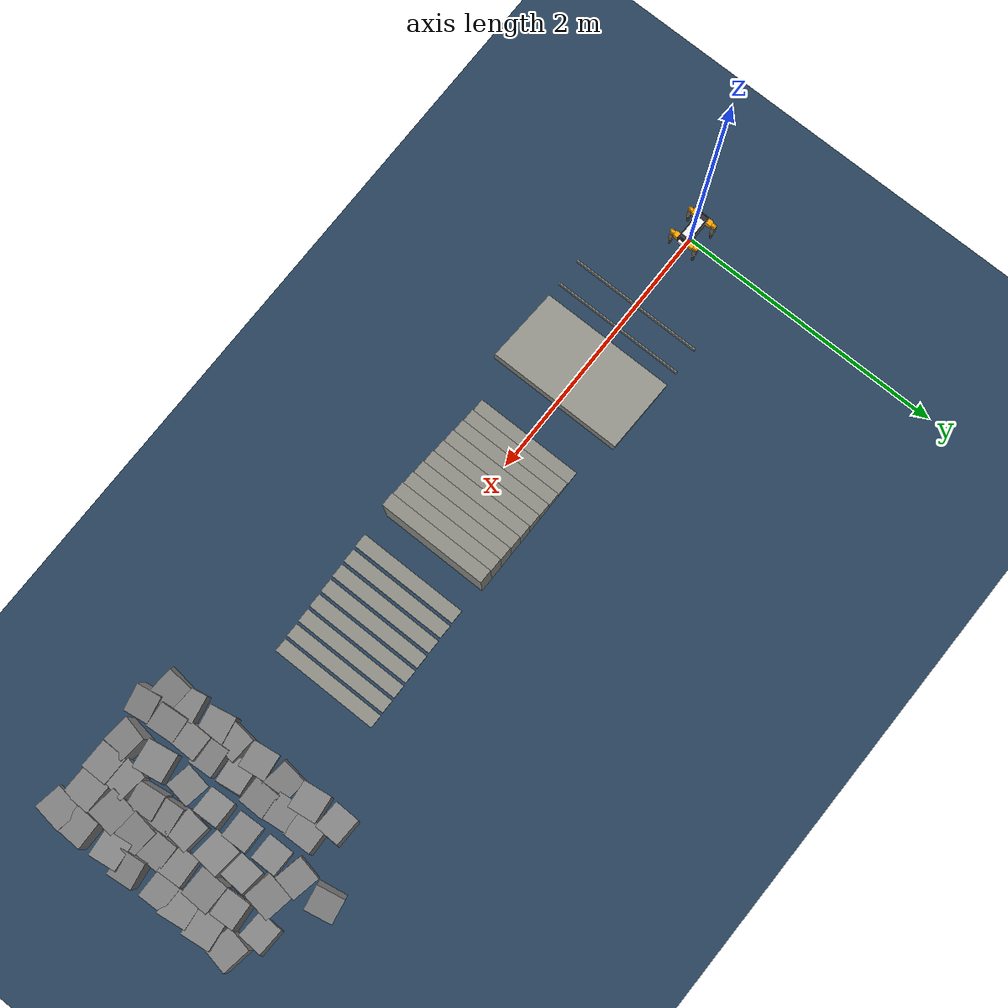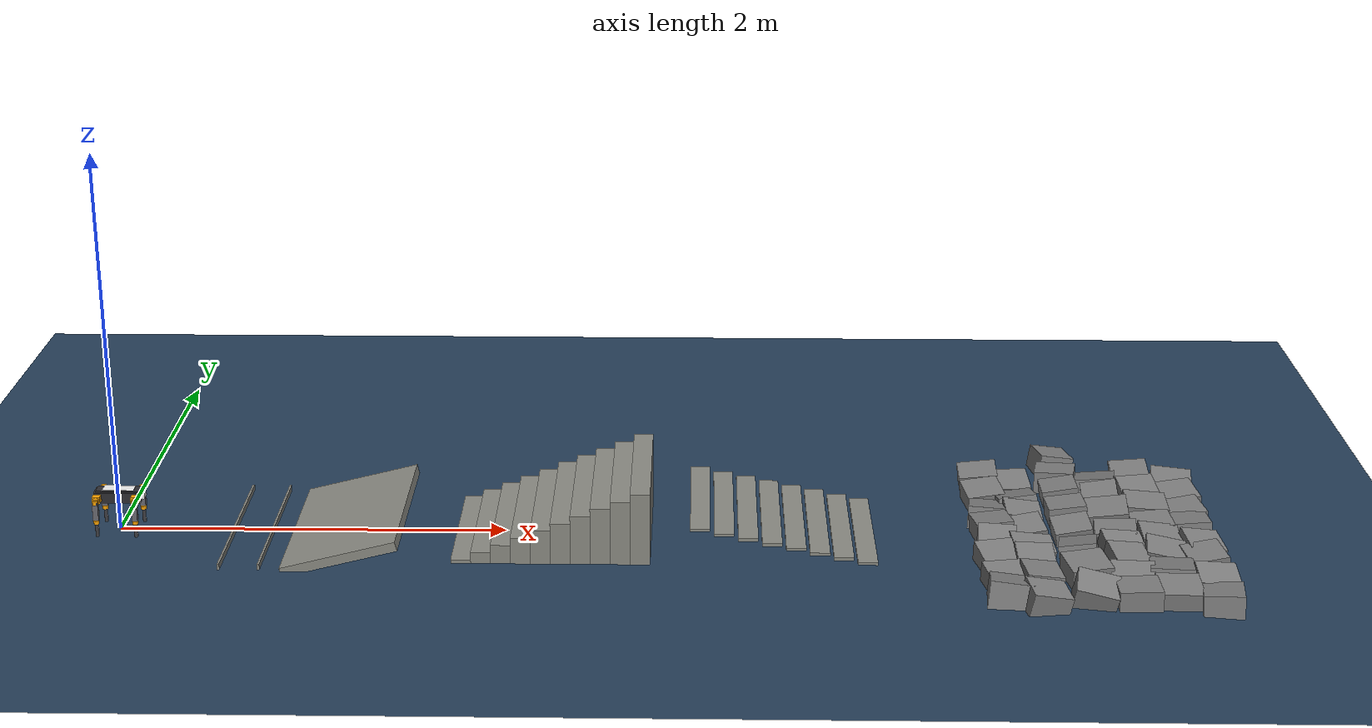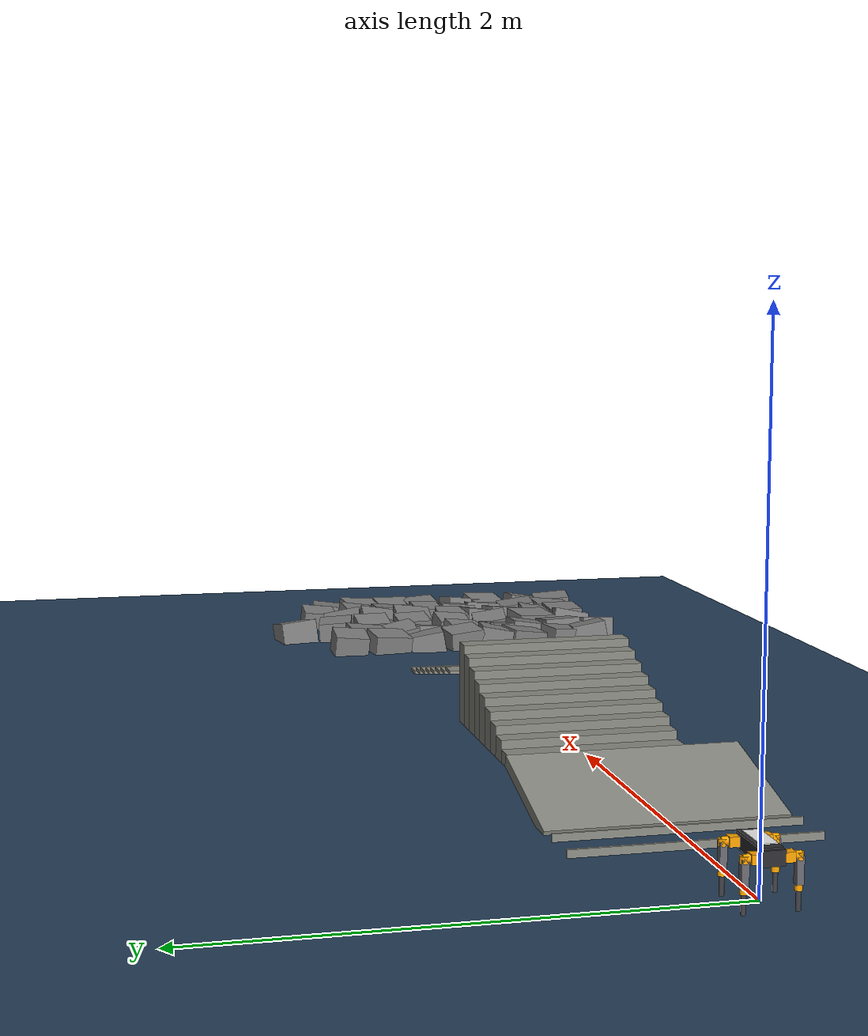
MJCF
<mujoco model="spotmicro scene">

  <!-- Include the robot model -->
  <include file="spotmicro.xml"/>

  <!-- Camera framing: tighter extent for small robot -->
  <statistic center="0 0 0.05" extent="0.5"/>

  <!-- ─────────────────────────────────────────
       VISUAL SETTINGS
       Same mood as Go2 scene (blue-grey sky, soft haze)
       ───────────────────────────────────────── -->
  <visual>
    <headlight diffuse="0.6 0.6 0.6" ambient="0.3 0.3 0.3" specular="0 0 0"/>
    <rgba haze="0.15 0.25 0.35 1"/>
    <global azimuth="-130" elevation="-20"/>
  </visual>

  <!-- ─────────────────────────────────────────
       ASSETS
       ───────────────────────────────────────── -->
  <asset>
    <!-- Sky gradient: deep blue-black -->
    <texture type="skybox" builtin="gradient"
             rgb1="0.3 0.5 0.7" rgb2="0 0 0"
             width="512" height="3072"/>

    <!-- Checker ground plane -->
    <texture type="2d" name="groundplane" builtin="checker"
             mark="edge"
             rgb1="0.2 0.3 0.4" rgb2="0.1 0.2 0.3"
             markrgb="0.8 0.8 0.8"
             width="300" height="300"/>
    <material name="groundplane" texture="groundplane"
              texuniform="true" texrepeat="5 5" reflectance="0.2"/>

    <!-- Obstacle concrete material -->
    <material name="concrete" rgba="0.55 0.55 0.52 1"/>

  </asset>

  <!-- ─────────────────────────────────────────
       WORLD BODY
       ───────────────────────────────────────── -->
  <worldbody>

    <!-- Sun light -->
    <light pos="0 0 2" dir="0 0 -1" directional="true"
           diffuse="0.8 0.8 0.8" specular="0.1 0.1 0.1"/>
    <!-- Fill light from front -->
    <light pos="2 -1 1.5" dir="-1 0.5 -1" directional="true"
           diffuse="0.25 0.28 0.35" specular="0 0 0"/>

    <!-- ── Ground plane ── -->
    <geom name="floor" size="0 0 0.05" type="plane"
          material="groundplane"/>

    <geom name="hurdle_1" pos="0.60 0 0.016" type="box"
          size="0.005 0.5 0.016" quat="1 0 0 0"
          material="concrete"/>
    <geom name="hurdle_2" pos="0.80 0 0.016" type="box"
          size="0.005 0.5 0.016" quat="1 0 0 0"
          material="concrete"/>

    <geom name="ramp" pos="1.20 0 0.06" type="box"
          size="0.30 0.50 0.025"
          quat="0.992 0 -0.124 0"
          material="concrete"/>

    <geom name="step_a01" pos="1.80 0 0.010" type="box" size="0.05 0.40 0.010" material="concrete"/>
    <geom name="step_a02" pos="1.90 0 0.030" type="box" size="0.05 0.40 0.030" material="concrete"/>
    <geom name="step_a03" pos="2.00 0 0.050" type="box" size="0.05 0.40 0.050" material="concrete"/>
    <geom name="step_a04" pos="2.10 0 0.070" type="box" size="0.05 0.40 0.070" material="concrete"/>
    <geom name="step_a05" pos="2.20 0 0.090" type="box" size="0.05 0.40 0.090" material="concrete"/>
    <geom name="step_a06" pos="2.30 0 0.110" type="box" size="0.05 0.40 0.110" material="concrete"/>
    <geom name="step_a07" pos="2.40 0 0.130" type="box" size="0.05 0.40 0.130" material="concrete"/>
    <geom name="step_a08" pos="2.50 0 0.150" type="box" size="0.05 0.40 0.150" material="concrete"/>
    <geom name="step_a09" pos="2.60 0 0.170" type="box" size="0.05 0.40 0.170" material="concrete"/>
    <geom name="step_a10" pos="2.70 0 0.190" type="box" size="0.05 0.40 0.190" material="concrete"/>

    <geom name="step_d01" pos="3.00 0 0.190" type="box" size="0.05 0.40 0.008" material="concrete"/>
    <geom name="step_d02" pos="3.12 0 0.165" type="box" size="0.05 0.40 0.008" material="concrete"/>
    <geom name="step_d03" pos="3.24 0 0.140" type="box" size="0.05 0.40 0.008" material="concrete"/>
    <geom name="step_d04" pos="3.36 0 0.115" type="box" size="0.05 0.40 0.008" material="concrete"/>
    <geom name="step_d05" pos="3.48 0 0.090" type="box" size="0.05 0.40 0.008" material="concrete"/>
    <geom name="step_d06" pos="3.60 0 0.065" type="box" size="0.05 0.40 0.008" material="concrete"/>
    <geom name="step_d07" pos="3.72 0 0.040" type="box" size="0.05 0.40 0.008" material="concrete"/>
    <geom name="step_d08" pos="3.84 0 0.015" type="box" size="0.05 0.40 0.008" material="concrete"/>

    <!-- Row 1 (x ≈ 4.50) -->
    <geom pos="4.50 -0.770 0.00" type="box" size="0.107 0.093 0.109" quat="0.994 -0.090  0.046 -0.047"/>
    <geom pos="4.50 -0.608 0.00" type="box" size="0.100 0.096 0.091" quat="0.995  0.043  0.004  0.092"/>
    <geom pos="4.50 -0.367 0.00" type="box" size="0.110 0.100 0.091" quat="0.993  0.072 -0.005  0.097"/>
    <geom pos="4.50 -0.201 0.00" type="box" size="0.097 0.090 0.107" quat="0.994  0.095  0.008 -0.049"/>
    <geom pos="4.50 -0.026 0.00" type="box" size="0.096 0.097 0.106" quat="0.996 -0.041 -0.036  0.065"/>
    <geom pos="4.50  0.177 0.00" type="box" size="0.103 0.095 0.092" quat="0.994 -0.088  0.017 -0.066"/>
    <geom pos="4.50  0.407 0.00" type="box" size="0.099 0.104 0.096" quat="0.996  0.043 -0.045  0.065"/>
    <geom pos="4.50  0.629 0.00" type="box" size="0.102 0.093 0.107" quat="0.997  0.045 -0.057 -0.013"/>

    <!-- Row 2 (x ≈ 4.66) -->
    <geom pos="4.66 -0.831 0.00" type="box" size="0.099 0.092 0.102" quat="0.991  0.031  0.100  0.078"/>
    <geom pos="4.66 -0.635 0.00" type="box" size="0.092 0.103 0.109" quat="0.997 -0.013  0.063  0.040"/>
    <geom pos="4.66 -0.435 0.00" type="box" size="0.094 0.106 0.102" quat="0.997  0.078  0.024  0.006"/>
    <geom pos="4.66 -0.282 0.00" type="box" size="0.105 0.092 0.095" quat="0.997  0.041  0.064  0.035"/>
    <geom pos="4.66 -0.063 0.00" type="box" size="0.103 0.095 0.097" quat="0.993  0.066 -0.064  0.067"/>
    <geom pos="4.66  0.140 0.00" type="box" size="0.095 0.097 0.096" quat="0.997  0.039  0.073  0.001"/>
    <geom pos="4.66  0.302 0.00" type="box" size="0.101 0.098 0.100" quat="0.993 -0.093 -0.052  0.051"/>
    <geom pos="4.66  0.508 0.00" type="box" size="0.091 0.107 0.103" quat="0.998  0.061 -0.013  0.019"/>

    <!-- Row 3 (x ≈ 4.91) -->
    <geom pos="4.91 -0.759 0.00" type="box" size="0.105 0.098 0.104" quat="0.988  0.102  0.085 -0.084"/>
    <geom pos="4.91 -0.528 0.00" type="box" size="0.104 0.110 0.109" quat="0.996  0.026 -0.029  0.082"/>
    <geom pos="4.91 -0.290 0.00" type="box" size="0.094 0.095 0.098" quat="0.990 -0.087 -0.080 -0.080"/>
    <geom pos="4.91 -0.045 0.00" type="box" size="0.096 0.095 0.096" quat="0.995  0.054 -0.079  0.019"/>
    <geom pos="4.91  0.186 0.00" type="box" size="0.098 0.093 0.108" quat="0.998 -0.012 -0.056  0.015"/>
    <geom pos="4.91  0.425 0.00" type="box" size="0.094 0.094 0.108" quat="0.997 -0.004 -0.079  0.004"/>
    <geom pos="4.91  0.632 0.00" type="box" size="0.104 0.092 0.107" quat="0.994 -0.038 -0.015 -0.099"/>
    <geom pos="4.91  0.868 0.00" type="box" size="0.091 0.102 0.104" quat="0.992 -0.046  0.081  0.088"/>

    <!-- Row 4 (x ≈ 5.12) -->
    <geom pos="5.12 -0.784 0.00" type="box" size="0.105 0.096 0.099" quat="1.000 -0.003 -0.021 -0.001"/>
    <geom pos="5.12 -0.613 0.00" type="box" size="0.107 0.099 0.093" quat="0.995  0.074 -0.014 -0.061"/>
    <geom pos="5.12 -0.409 0.00" type="box" size="0.093 0.101 0.104" quat="0.994  0.051  0.067  0.069"/>
    <geom pos="5.12 -0.259 0.00" type="box" size="0.101 0.099 0.098" quat="0.994  0.076  0.059  0.050"/>
    <geom pos="5.12 -0.094 0.00" type="box" size="0.106 0.091 0.097" quat="0.998  0.021 -0.032 -0.055"/>
    <geom pos="5.12  0.153 0.00" type="box" size="0.108 0.104 0.105" quat="0.995  0.052 -0.070 -0.039"/>
    <geom pos="5.12  0.366 0.00" type="box" size="0.094 0.096 0.105" quat="0.992  0.076 -0.093 -0.034"/>
    <geom pos="5.12  0.552 0.00" type="box" size="0.104 0.108 0.096" quat="0.989 -0.101 -0.060 -0.087"/>

    <!-- Row 5 (x ≈ 5.32) -->
    <geom pos="5.32 -0.756 0.00" type="box" size="0.105 0.106 0.092" quat="0.999  0.044 -0.006 -0.004"/>
    <geom pos="5.32 -0.553 0.00" type="box" size="0.108 0.104 0.099" quat="0.993 -0.069 -0.003 -0.064"/>
    <geom pos="5.32 -0.329 0.00" type="box" size="0.103 0.099 0.096" quat="0.994  0.050  0.080 -0.063"/>
    <geom pos="5.32 -0.158 0.00" type="box" size="0.101 0.099 0.098" quat="0.996  0.045  0.058  0.005"/>
    <geom pos="5.32  0.010 0.00" type="box" size="0.104 0.091 0.097" quat="0.999  0.024 -0.032  0.027"/>
    <geom pos="5.32  0.238 0.00" type="box" size="0.108 0.105 0.101" quat="0.999  0.032  0.037 -0.010"/>
    <geom pos="5.32  0.449 0.00" type="box" size="0.097 0.093 0.105" quat="0.996  0.079 -0.026  0.037"/>
    <geom pos="5.32  0.684 0.00" type="box" size="0.099 0.092 0.098" quat="0.997  0.053 -0.048 -0.018"/>

    <!-- Row 6 (x ≈ 5.52) -->
    <geom pos="5.52 -0.831 0.00" type="box" size="0.098 0.106 0.095" quat="0.998 -0.047 -0.026 -0.081"/>
    <geom pos="5.52 -0.628 0.00" type="box" size="0.101 0.094 0.099" quat="0.994  0.086  0.033  0.003"/>
    <geom pos="5.52 -0.386 0.00" type="box" size="0.096 0.101 0.099" quat="0.995  0.035 -0.066  0.068"/>
    <geom pos="5.52 -0.230 0.00" type="box" size="0.096 0.097 0.097" quat="0.993  0.064  0.082  0.070"/>
    <geom pos="5.52  0.010 0.00" type="box" size="0.094 0.091 0.099" quat="0.999 -0.037 -0.034  0.008"/>
    <geom pos="5.52  0.182 0.00" type="box" size="0.100 0.106 0.093" quat="0.995  0.017 -0.066  0.068"/>
    <geom pos="5.52  0.389 0.00" type="box" size="0.101 0.107 0.099" quat="0.996  0.043 -0.045  0.065"/>
    <geom pos="5.52  0.588 0.00" type="box" size="0.106 0.098 0.091" quat="0.994  0.062  0.019 -0.081"/>

  </worldbody>

</mujoco>

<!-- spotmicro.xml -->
<mujoco model="spotmicro">

  <compiler angle="radian" autolimits="true"/>

  <option cone="elliptic" impratio="10" gravity="0 0 -9.81"/>

  <default>
    <default class="spotmicro">
      <!-- group 1 = always visible in MuJoCo viewer by default -->
      <geom group="1" friction="0.6" margin="0.001" condim="1"/>
      <joint axis="0 1 0" damping="0.05" armature="0.002" frictionloss="0.05"/>
      <motor ctrlrange="-3.2 3.2" gear="1"/>

      <default class="abduction">
        <joint axis="1 0 0" range="-1.0908 1.0908"/>
      </default>
      <default class="hip">
        <joint range="-1.3963 1.7453"/>
      </default>
      <default class="knee">
        <joint range="-2.6180 -0.3491"/>
        <motor ctrlrange="-3.2 3.2"/>
      </default>

      <!-- Foot: high friction sphere, black -->
      <default class="foot">
        <geom type="sphere" size="0.015" group="1"
              priority="1" condim="6"
              friction="0.8 0.02 0.01"
              rgba="0.08 0.08 0.08 1"/>
      </default>
    </default>
  </default>

  <asset>
    <material name="body_shell" rgba="0.18 0.18 0.20 1"/>
    <material name="shoulder"   rgba="1.00 0.65 0.00 1"/>
    <material name="thigh"      rgba="0.42 0.42 0.45 1"/>
    <material name="calf"       rgba="0.25 0.25 0.27 1"/>
    <material name="accent"     rgba="0.95 0.95 0.95 1"/>
  </asset>

  <worldbody>

    <body name="base_link" pos="0 0 0.185" childclass="spotmicro">

      <inertial pos="0 0 0" mass="0.560"
                diaginertia="0.00108 0.00556 0.00604"/>
      <freejoint/>
      <site name="imu" pos="0 0 0.030"/>

      <!-- ── Body ── -->
      <geom name="body_main" type="box"
            size="0.120 0.042 0.028" pos="0 0 0"
            material="body_shell"/>
      <geom name="body_top" type="box"
            size="0.110 0.036 0.005" pos="0 0 0.030"
            material="body_shell"/>
      <!-- White accent stripe (no collision needed) -->
      <geom name="accent_stripe" type="box"
            size="0.080 0.032 0.003" pos="0.005 0 0.036"
            contype="0" conaffinity="0"
            material="accent"/>
      <!-- Front sensor face -->
      <geom name="sensor_bump" type="box"
            size="0.010 0.025 0.015" pos="0.128 0 0.005"
            contype="0" conaffinity="0"
            material="accent"/>

      <!-- ══════════════════════════════════════
           FRONT-LEFT LEG (FL)
           ══════════════════════════════════════ -->
      <body name="FL_shoulder" pos="0.100 0.042 0">
        <inertial pos="0 0.028 0" mass="0.060"
                  diaginertia="0.000025 0.000060 0.000060"/>
        <joint name="FL_hip_joint" class="abduction"/>
        <!-- Shoulder servo block -->
        <geom type="box" size="0.020 0.018 0.018"
              pos="0 0.018 0" material="shoulder"/>
        <!-- Hip knuckle -->
        <geom type="cylinder" size="0.016 0.022"
              pos="0 0.040 0" quat="0.707107 0.707107 0 0"
              material="shoulder"/>

        <body name="FL_thigh" pos="0 0.055 0">
          <inertial pos="0 0 -0.054" mass="0.120"
                    diaginertia="0.000200 0.000200 0.000015"/>
          <joint name="FL_thigh_joint" class="hip"/>
          <!-- Thigh link -->
          <geom type="box" size="0.014 0.013 0.050"
                pos="0 0 -0.050" material="thigh"/>
          <!-- Knee servo cap at top of thigh -->
          <geom type="cylinder" size="0.016 0.013"
                pos="0 0 -0.002" material="shoulder"/>

          <body name="FL_calf" pos="0 0 -0.1085">
            <inertial pos="0 0 -0.069" mass="0.060"
                      diaginertia="0.000100 0.000100 0.000006"/>
            <joint name="FL_calf_joint" class="knee"/>
            <!-- Calf rod -->
            <geom type="cylinder" size="0.009 0.065"
                  pos="0 0 -0.065" material="calf"/>
            <!-- Knee servo cap -->
            <geom type="cylinder" size="0.014 0.010"
                  pos="0 0 -0.002" material="shoulder"/>
            <!-- Foot pad -->
            <geom name="FL" pos="0 0 -0.1385" class="foot"/>
            <body name="FL_foot" pos="0 0 -0.1385"/>
          </body>
        </body>
      </body>

      <!-- ══════════════════════════════════════
           FRONT-RIGHT LEG (FR)
           ══════════════════════════════════════ -->
      <body name="FR_shoulder" pos="0.100 -0.042 0">
        <inertial pos="0 -0.028 0" mass="0.060"
                  diaginertia="0.000025 0.000060 0.000060"/>
        <joint name="FR_hip_joint" class="abduction"/>
        <geom type="box" size="0.020 0.018 0.018"
              pos="0 -0.018 0" material="shoulder"/>
        <geom type="cylinder" size="0.016 0.022"
              pos="0 -0.040 0" quat="0.707107 0.707107 0 0"
              material="shoulder"/>

        <body name="FR_thigh" pos="0 -0.055 0">
          <inertial pos="0 0 -0.054" mass="0.120"
                    diaginertia="0.000200 0.000200 0.000015"/>
          <joint name="FR_thigh_joint" class="hip"/>
          <geom type="box" size="0.014 0.013 0.050"
                pos="0 0 -0.050" material="thigh"/>
          <geom type="cylinder" size="0.016 0.013"
                pos="0 0 -0.002" material="shoulder"/>

          <body name="FR_calf" pos="0 0 -0.1085">
            <inertial pos="0 0 -0.069" mass="0.060"
                      diaginertia="0.000100 0.000100 0.000006"/>
            <joint name="FR_calf_joint" class="knee"/>
            <geom type="cylinder" size="0.009 0.065"
                  pos="0 0 -0.065" material="calf"/>
            <geom type="cylinder" size="0.014 0.010"
                  pos="0 0 -0.002" material="shoulder"/>
            <geom name="FR" pos="0 0 -0.1385" class="foot"/>
            <body name="FR_foot" pos="0 0 -0.1385"/>
          </body>
        </body>
      </body>

      <!-- ══════════════════════════════════════
           REAR-LEFT LEG (RL)
           ══════════════════════════════════════ -->
      <body name="RL_shoulder" pos="-0.100 0.042 0">
        <inertial pos="0 0.028 0" mass="0.060"
                  diaginertia="0.000025 0.000060 0.000060"/>
        <joint name="RL_hip_joint" class="abduction"/>
        <geom type="box" size="0.020 0.018 0.018"
              pos="0 0.018 0" material="shoulder"/>
        <geom type="cylinder" size="0.016 0.022"
              pos="0 0.040 0" quat="0.707107 0.707107 0 0"
              material="shoulder"/>

        <body name="RL_thigh" pos="0 0.055 0">
          <inertial pos="0 0 -0.054" mass="0.120"
                    diaginertia="0.000200 0.000200 0.000015"/>
          <joint name="RL_thigh_joint" class="hip"/>
          <geom type="box" size="0.014 0.013 0.050"
                pos="0 0 -0.050" material="thigh"/>
          <geom type="cylinder" size="0.016 0.013"
                pos="0 0 -0.002" material="shoulder"/>

          <body name="RL_calf" pos="0 0 -0.1085">
            <inertial pos="0 0 -0.069" mass="0.060"
                      diaginertia="0.000100 0.000100 0.000006"/>
            <joint name="RL_calf_joint" class="knee"/>
            <geom type="cylinder" size="0.009 0.065"
                  pos="0 0 -0.065" material="calf"/>
            <geom type="cylinder" size="0.014 0.010"
                  pos="0 0 -0.002" material="shoulder"/>
            <geom name="RL" pos="0 0 -0.1385" class="foot"/>
            <body name="RL_foot" pos="0 0 -0.1385"/>
          </body>
        </body>
      </body>

      <!-- ══════════════════════════════════════
           REAR-RIGHT LEG (RR)
           ══════════════════════════════════════ -->
      <body name="RR_shoulder" pos="-0.100 -0.042 0">
        <inertial pos="0 -0.028 0" mass="0.060"
                  diaginertia="0.000025 0.000060 0.000060"/>
        <joint name="RR_hip_joint" class="abduction"/>
        <geom type="box" size="0.020 0.018 0.018"
              pos="0 -0.018 0" material="shoulder"/>
        <geom type="cylinder" size="0.016 0.022"
              pos="0 -0.040 0" quat="0.707107 0.707107 0 0"
              material="shoulder"/>

        <body name="RR_thigh" pos="0 -0.055 0">
          <inertial pos="0 0 -0.054" mass="0.120"
                    diaginertia="0.000200 0.000200 0.000015"/>
          <joint name="RR_thigh_joint" class="hip"/>
          <geom type="box" size="0.014 0.013 0.050"
                pos="0 0 -0.050" material="thigh"/>
          <geom type="cylinder" size="0.016 0.013"
                pos="0 0 -0.002" material="shoulder"/>

          <body name="RR_calf" pos="0 0 -0.1085">
            <inertial pos="0 0 -0.069" mass="0.060"
                      diaginertia="0.000100 0.000100 0.000006"/>
            <joint name="RR_calf_joint" class="knee"/>
            <geom type="cylinder" size="0.009 0.065"
                  pos="0 0 -0.065" material="calf"/>
            <geom type="cylinder" size="0.014 0.010"
                  pos="0 0 -0.002" material="shoulder"/>
            <geom name="RR" pos="0 0 -0.1385" class="foot"/>
            <body name="RR_foot" pos="0 0 -0.1385"/>
          </body>
        </body>
      </body>

    </body>
  </worldbody>

  <!-- ─────────────────────────────────────────
       ACTUATORS
       ───────────────────────────────────────── -->
  <actuator>
    <motor class="abduction" name="FR_hip"   joint="FR_hip_joint"/>
    <motor class="hip"       name="FR_thigh" joint="FR_thigh_joint"/>
    <motor class="knee"      name="FR_calf"  joint="FR_calf_joint"/>
    <motor class="abduction" name="FL_hip"   joint="FL_hip_joint"/>
    <motor class="hip"       name="FL_thigh" joint="FL_thigh_joint"/>
    <motor class="knee"      name="FL_calf"  joint="FL_calf_joint"/>
    <motor class="abduction" name="RR_hip"   joint="RR_hip_joint"/>
    <motor class="hip"       name="RR_thigh" joint="RR_thigh_joint"/>
    <motor class="knee"      name="RR_calf"  joint="RR_calf_joint"/>
    <motor class="abduction" name="RL_hip"   joint="RL_hip_joint"/>
    <motor class="hip"       name="RL_thigh" joint="RL_thigh_joint"/>
    <motor class="knee"      name="RL_calf"  joint="RL_calf_joint"/>
  </actuator>

  <!-- ─────────────────────────────────────────
       SENSORS
       ───────────────────────────────────────── -->
  <sensor>
    <jointpos name="FR_hip_pos"   joint="FR_hip_joint"/>
    <jointpos name="FR_thigh_pos" joint="FR_thigh_joint"/>
    <jointpos name="FR_calf_pos"  joint="FR_calf_joint"/>
    <jointpos name="FL_hip_pos"   joint="FL_hip_joint"/>
    <jointpos name="FL_thigh_pos" joint="FL_thigh_joint"/>
    <jointpos name="FL_calf_pos"  joint="FL_calf_joint"/>
    <jointpos name="RR_hip_pos"   joint="RR_hip_joint"/>
    <jointpos name="RR_thigh_pos" joint="RR_thigh_joint"/>
    <jointpos name="RR_calf_pos"  joint="RR_calf_joint"/>
    <jointpos name="RL_hip_pos"   joint="RL_hip_joint"/>
    <jointpos name="RL_thigh_pos" joint="RL_thigh_joint"/>
    <jointpos name="RL_calf_pos"  joint="RL_calf_joint"/>

    <jointvel name="FR_hip_vel"   joint="FR_hip_joint"/>
    <jointvel name="FR_thigh_vel" joint="FR_thigh_joint"/>
    <jointvel name="FR_calf_vel"  joint="FR_calf_joint"/>
    <jointvel name="FL_hip_vel"   joint="FL_hip_joint"/>
    <jointvel name="FL_thigh_vel" joint="FL_thigh_joint"/>
    <jointvel name="FL_calf_vel"  joint="FL_calf_joint"/>
    <jointvel name="RR_hip_vel"   joint="RR_hip_joint"/>
    <jointvel name="RR_thigh_vel" joint="RR_thigh_joint"/>
    <jointvel name="RR_calf_vel"  joint="RR_calf_joint"/>
    <jointvel name="RL_hip_vel"   joint="RL_hip_joint"/>
    <jointvel name="RL_thigh_vel" joint="RL_thigh_joint"/>
    <jointvel name="RL_calf_vel"  joint="RL_calf_joint"/>

    <jointactuatorfrc name="FR_hip_torque"   joint="FR_hip_joint"   noise="0.005"/>
    <jointactuatorfrc name="FR_thigh_torque" joint="FR_thigh_joint" noise="0.005"/>
    <jointactuatorfrc name="FR_calf_torque"  joint="FR_calf_joint"  noise="0.005"/>
    <jointactuatorfrc name="FL_hip_torque"   joint="FL_hip_joint"   noise="0.005"/>
    <jointactuatorfrc name="FL_thigh_torque" joint="FL_thigh_joint" noise="0.005"/>
    <jointactuatorfrc name="FL_calf_torque"  joint="FL_calf_joint"  noise="0.005"/>
    <jointactuatorfrc name="RR_hip_torque"   joint="RR_hip_joint"   noise="0.005"/>
    <jointactuatorfrc name="RR_thigh_torque" joint="RR_thigh_joint" noise="0.005"/>
    <jointactuatorfrc name="RR_calf_torque"  joint="RR_calf_joint"  noise="0.005"/>
    <jointactuatorfrc name="RL_hip_torque"   joint="RL_hip_joint"   noise="0.005"/>
    <jointactuatorfrc name="RL_thigh_torque" joint="RL_thigh_joint" noise="0.005"/>
    <jointactuatorfrc name="RL_calf_torque"  joint="RL_calf_joint"  noise="0.005"/>

    <framequat     name="imu_quat" objtype="site" objname="imu"/>
    <gyro          name="imu_gyro" site="imu"/>
    <accelerometer name="imu_acc"  site="imu"/>
    <framepos      name="frame_pos" objtype="site" objname="imu"/>
    <framelinvel   name="frame_vel" objtype="site" objname="imu"/>
  </sensor>

  <!-- ─────────────────────────────────────────
       KEYFRAMES
       ───────────────────────────────────────── -->
  <keyframe>
    <key name="home"
         qpos="0 0 0.185  1 0 0 0
               0  0.75 -1.50
               0  0.75 -1.50
               0  0.75 -1.50
               0  0.75 -1.50"
         ctrl="0 0.75 -1.50
               0 0.75 -1.50
               0 0.75 -1.50
               0 0.75 -1.50"/>
    <key name="sit"
         qpos="0 0 0.110  1 0 0 0
               0  1.20 -2.40
               0  1.20 -2.40
               0  1.20 -2.40
               0  1.20 -2.40"
         ctrl="0 1.20 -2.40
               0 1.20 -2.40
               0 1.20 -2.40
               0 1.20 -2.40"/>
  </keyframe>

</mujoco>
